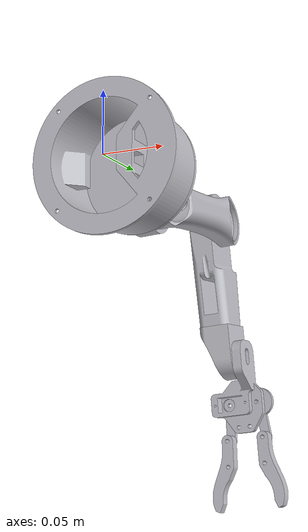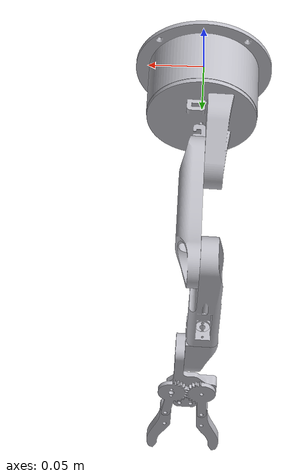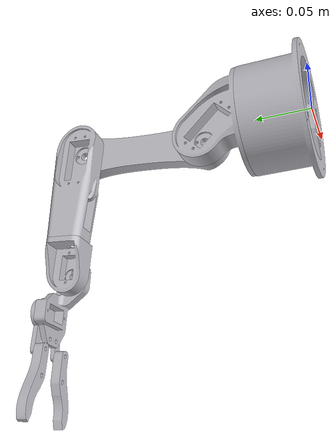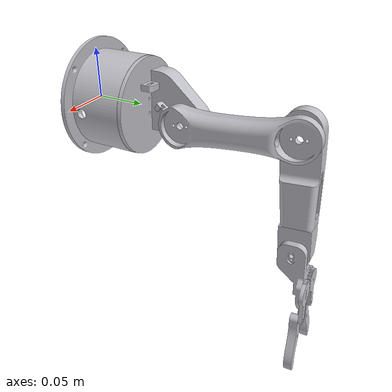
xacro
<?xml version="1.0"?>
<robot xmlns:xacro="http://www.ros.org/wiki/xacro" name="robotic_arm">
    <xacro:arg name="initial_positions_file" default="initial_positions.yaml" />

    <!-- Import robotic_arm urdf file -->
    <xacro:include filename="$(find robotic_arm_description)/urdf/robotic_arm.xacro" />

    <!-- Import control_xacro -->
    <xacro:include filename="robotic_arm.ros2_control.xacro" />

    <xacro:robotic_arm_ros2_control name="FakeSystem" initial_positions_file="$(arg initial_positions_file)"/>

</robot>

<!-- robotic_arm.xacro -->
<robot name="robotic_arm" xmlns:xacro="http://www.ros.org/wiki/xacro">

<xacro:include filename="$(find robotic_arm_description)/urdf/materials.xacro" />
<xacro:include filename="$(find robotic_arm_description)/urdf/robotic_arm.trans" />
<xacro:include filename="$(find robotic_arm_description)/urdf/robotic_arm.gazebo" />
<link name="base_link">
  <inertial>
    <origin xyz="0.0001171431546930657 0.022303576295246867 1.7519874916372608e-15" rpy="0 0 0"/>
    <mass value="0.7538944695406546"/>
    <inertia ixx="0.001005" iyy="0.001633" izz="0.001081" ixy="3.1e-05" iyz="0.0" ixz="0.0"/>
  </inertial>
  <visual>
    <origin xyz="0 0 0" rpy="0 0 0"/>
    <geometry>
      <mesh filename="package://robotic_arm_description/meshes/base_link.stl" scale="0.001 0.001 0.001"/>
    </geometry>
    <material name="silver"/>
  </visual>
  <collision>
    <origin xyz="0 0 0" rpy="0 0 0"/>
    <geometry>
      <mesh filename="package://robotic_arm_description/meshes/base_link.stl" scale="0.001 0.001 0.001"/>
    </geometry>
  </collision>
</link>

<link name="link_1_1">
  <inertial>
    <origin xyz="-0.006349206904501283 0.017289464494254593 -0.0017242407505354822" rpy="0 0 0"/>
    <mass value="0.5340963741858208"/>
    <inertia ixx="0.000457" iyy="0.000429" izz="0.000353" ixy="3.8e-05" iyz="5.1e-05" ixz="1e-06"/>
  </inertial>
  <visual>
    <origin xyz="-0.0 -0.056 -0.0" rpy="0 0 0"/>
    <geometry>
      <mesh filename="package://robotic_arm_description/meshes/link_1.stl" scale="0.001 0.001 0.001"/>
    </geometry>
    <material name="silver"/>
  </visual>
  <collision>
    <origin xyz="-0.0 -0.056 -0.0" rpy="0 0 0"/>
    <geometry>
      <mesh filename="package://robotic_arm_description/meshes/link_1.stl" scale="0.001 0.001 0.001"/>
    </geometry>
  </collision>
</link>

<link name="link_2_1">
  <inertial>
    <origin xyz="0.007458301591544432 0.05834016327651115 0.005840208407999372" rpy="0 0 0"/>
    <mass value="0.5054465993746223"/>
    <inertia ixx="0.000903" iyy="7.8e-05" izz="0.000859" ixy="5e-06" iyz="-6.6e-05" ixz="3e-06"/>
  </inertial>
  <visual>
    <origin xyz="0.003228 -0.096276 0.014118" rpy="0 0 0"/>
    <geometry>
      <mesh filename="package://robotic_arm_description/meshes/link_2.stl" scale="0.001 0.001 0.001"/>
    </geometry>
    <material name="silver"/>
  </visual>
  <collision>
    <origin xyz="0.003228 -0.096276 0.014118" rpy="0 0 0"/>
    <geometry>
      <mesh filename="package://robotic_arm_description/meshes/link_2.stl" scale="0.001 0.001 0.001"/>
    </geometry>
  </collision>
</link>

<link name="link_3_1">
  <inertial>
    <origin xyz="-0.005244224588835711 0.003575528092308461 -0.039471688392396564" rpy="0 0 0"/>
    <mass value="0.3946102743313453"/>
    <inertia ixx="0.000456" iyy="0.000426" izz="7.7e-05" ixy="-2e-06" iyz="3.2e-05" ixz="1.9e-05"/>
  </inertial>
  <visual>
    <origin xyz="0.003824 -0.215786 0.003298" rpy="0 0 0"/>
    <geometry>
      <mesh filename="package://robotic_arm_description/meshes/link_3.stl" scale="0.001 0.001 0.001"/>
    </geometry>
    <material name="silver"/>
  </visual>
  <collision>
    <origin xyz="0.003824 -0.215786 0.003298" rpy="0 0 0"/>
    <geometry>
      <mesh filename="package://robotic_arm_description/meshes/link_3.stl" scale="0.001 0.001 0.001"/>
    </geometry>
  </collision>
</link>

<link name="link_4_1">
  <inertial>
    <origin xyz="0.006209755305328308 0.006636171727518736 -0.016997387345786888" rpy="0 0 0"/>
    <mass value="0.129528136691123"/>
    <inertia ixx="3.9e-05" iyy="3.1e-05" izz="2.1e-05" ixy="-0.0" iyz="1e-06" ixz="6e-06"/>
  </inertial>
  <visual>
    <origin xyz="0.006366 -0.218612 0.093437" rpy="0 0 0"/>
    <geometry>
      <mesh filename="package://robotic_arm_description/meshes/link_4.stl" scale="0.001 0.001 0.001"/>
    </geometry>
    <material name="silver"/>
  </visual>
  <collision>
    <origin xyz="0.006366 -0.218612 0.093437" rpy="0 0 0"/>
    <geometry>
      <mesh filename="package://robotic_arm_description/meshes/link_4.stl" scale="0.001 0.001 0.001"/>
    </geometry>
  </collision>
</link>

<link name="link_5_1">
  <inertial>
    <origin xyz="-0.000701689680300318 0.007388450715264866 -0.02317984049900415" rpy="0 0 0"/>
    <mass value="0.12341304164534714"/>
    <inertia ixx="5.8e-05" iyy="6.2e-05" izz="2.1e-05" ixy="3e-06" iyz="1.4e-05" ixz="-9e-06"/>
  </inertial>
  <visual>
    <origin xyz="-0.009123 -0.22612 0.120059" rpy="0 0 0"/>
    <geometry>
      <mesh filename="package://robotic_arm_description/meshes/link_5.stl" scale="0.001 0.001 0.001"/>
    </geometry>
    <material name="silver"/>
  </visual>
  <collision>
    <origin xyz="-0.009123 -0.22612 0.120059" rpy="0 0 0"/>
    <geometry>
      <mesh filename="package://robotic_arm_description/meshes/link_5.stl" scale="0.001 0.001 0.001"/>
    </geometry>
  </collision>
</link>

<link name="link_6_1">
  <inertial>
    <origin xyz="0.0006316054982061902 0.0023728973428484568 -0.005427312313876276" rpy="0 0 0"/>
    <mass value="0.020736664284343446"/>
    <inertia ixx="3e-06" iyy="3e-06" izz="1e-06" ixy="0.0" iyz="0.0" ixz="-0.0"/>
  </inertial>
  <visual>
    <origin xyz="0.006715 -0.242645 0.15796" rpy="0 0 0"/>
    <geometry>
      <mesh filename="package://robotic_arm_description/meshes/link_6.stl" scale="0.001 0.001 0.001"/>
    </geometry>
    <material name="silver"/>
  </visual>
  <collision>
    <origin xyz="0.006715 -0.242645 0.15796" rpy="0 0 0"/>
    <geometry>
      <mesh filename="package://robotic_arm_description/meshes/link_6.stl" scale="0.001 0.001 0.001"/>
    </geometry>
  </collision>
</link>

<link name="link_7_1">
  <inertial>
    <origin xyz="0.0004447847250458846 0.0023792643753864917 -0.005532291094850261" rpy="0 0 0"/>
    <mass value="0.020141998404349184"/>
    <inertia ixx="3e-06" iyy="3e-06" izz="1e-06" ixy="-0.0" iyz="0.0" ixz="0.0"/>
  </inertial>
  <visual>
    <origin xyz="-0.020145 -0.242645 0.156479" rpy="0 0 0"/>
    <geometry>
      <mesh filename="package://robotic_arm_description/meshes/link_7.stl" scale="0.001 0.001 0.001"/>
    </geometry>
    <material name="silver"/>
  </visual>
  <collision>
    <origin xyz="-0.020145 -0.242645 0.156479" rpy="0 0 0"/>
    <geometry>
      <mesh filename="package://robotic_arm_description/meshes/link_7.stl" scale="0.001 0.001 0.001"/>
    </geometry>
  </collision>
</link>

<link name="link_8_1">
  <inertial>
    <origin xyz="-0.0043217768998322584 -0.0024471889446070483 -0.027144183797068788" rpy="0 0 0"/>
    <mass value="0.04236978910676512"/>
    <inertia ixx="1.3e-05" iyy="1.3e-05" izz="1e-06" ixy="0.0" iyz="1e-06" ixz="-3e-06"/>
  </inertial>
  <visual>
    <origin xyz="0.006512 -0.244712 0.18864" rpy="0 0 0"/>
    <geometry>
      <mesh filename="package://robotic_arm_description/meshes/link_8.stl" scale="0.001 0.001 0.001"/>
    </geometry>
    <material name="silver"/>
  </visual>
  <collision>
    <origin xyz="0.006512 -0.244712 0.18864" rpy="0 0 0"/>
    <geometry>
      <mesh filename="package://robotic_arm_description/meshes/link_8.stl" scale="0.001 0.001 0.001"/>
    </geometry>
  </collision>
</link>

<link name="link_9_1">
  <inertial>
    <origin xyz="0.005999725164482241 -0.002430666164696893 -0.026824809322127913" rpy="0 0 0"/>
    <mass value="0.04236978910676512"/>
    <inertia ixx="1.2e-05" iyy="1.3e-05" izz="2e-06" ixy="-0.0" iyz="1e-06" ixz="4e-06"/>
  </inertial>
  <visual>
    <origin xyz="-0.025827 -0.244697 0.18663" rpy="0 0 0"/>
    <geometry>
      <mesh filename="package://robotic_arm_description/meshes/link_9.stl" scale="0.001 0.001 0.001"/>
    </geometry>
    <material name="silver"/>
  </visual>
  <collision>
    <origin xyz="-0.025827 -0.244697 0.18663" rpy="0 0 0"/>
    <geometry>
      <mesh filename="package://robotic_arm_description/meshes/link_9.stl" scale="0.001 0.001 0.001"/>
    </geometry>
  </collision>
</link>

<joint name="Revolute 1" type="revolute">
  <origin xyz="0.0 0.056 0.0" rpy="0 0 0"/>
  <parent link="base_link"/>
  <child link="link_1_1"/>
  <axis xyz="0.0 1.0 0.0"/>
  <limit upper="6.283185" lower="0.0" effort="100" velocity="100"/>
</joint>

<joint name="Revolute 2" type="revolute">
  <origin xyz="-0.003228 0.040276 -0.014118" rpy="0 0 0"/>
  <parent link="link_1_1"/>
  <child link="link_2_1"/>
  <axis xyz="0.998484 0.0 0.055049"/>
  <limit upper="1.570796" lower="-1.570796" effort="100" velocity="100"/>
</joint>

<joint name="Revolute 3" type="revolute">
  <origin xyz="-0.000596 0.11951 0.01082" rpy="0 0 0"/>
  <parent link="link_2_1"/>
  <child link="link_3_1"/>
  <axis xyz="-0.998484 -0.0 -0.055049"/>
  <limit upper="0.0" lower="-3.141593" effort="100" velocity="100"/>
</joint>

<joint name="Revolute 4" type="revolute">
  <origin xyz="-0.002542 0.002826 -0.090139" rpy="0 0 0"/>
  <parent link="link_3_1"/>
  <child link="link_4_1"/>
  <axis xyz="0.054824 0.090297 -0.994405"/>
  <limit upper="6.283185" lower="0.0" effort="100" velocity="100"/>
</joint>

<joint name="Revolute 5" type="revolute">
  <origin xyz="0.015489 0.007508 -0.026622" rpy="0 0 0"/>
  <parent link="link_4_1"/>
  <child link="link_5_1"/>
  <axis xyz="-0.998484 -0.0 -0.055049"/>
  <limit upper="1.570796" lower="-1.570796" effort="100" velocity="100"/>
</joint>

<joint name="Revolute 6" type="revolute">
  <origin xyz="-0.015838 0.016525 -0.037901" rpy="0 0 0"/>
  <parent link="link_5_1"/>
  <child link="link_6_1"/>
  <axis xyz="-0.003705 0.997733 0.067194"/>
  <limit upper="1.22173" lower="0.0" effort="100" velocity="100"/>
</joint>

<joint name="Revolute 7" type="revolute">
  <origin xyz="0.011022 0.016525 -0.03642" rpy="0 0 0"/>
  <parent link="link_5_1"/>
  <child link="link_7_1"/>
  <axis xyz="-0.003705 0.997733 0.067194"/>
  <limit upper="0.0" lower="-1.22173" effort="100" velocity="100"/>
</joint>

<joint name="Revolute 9" type="revolute">
  <origin xyz="0.000203 0.002067 -0.03068" rpy="0 0 0"/>
  <parent link="link_6_1"/>
  <child link="link_8_1"/>
  <axis xyz="0.003705 -0.997733 -0.067194"/>
  <limit upper="0.0" lower="-1.570796" effort="100" velocity="100"/>
</joint>

<joint name="Revolute 10" type="revolute">
  <origin xyz="0.005682 0.002052 -0.030151" rpy="0 0 0"/>
  <parent link="link_7_1"/>
  <child link="link_9_1"/>
  <axis xyz="0.003705 -0.997733 -0.067194"/>
  <limit upper="1.570796" lower="0.0" effort="100" velocity="100"/>
</joint>

</robot>

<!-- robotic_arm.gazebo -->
<robot name="robotic_arm" xmlns:xacro="http://www.ros.org/wiki/xacro" >

<xacro:property name="body_color" value="Gazebo/Silver" />

<gazebo>
  <plugin name="control" filename="libgazebo_ros_control.so"/>
</gazebo>
<gazebo reference="base_link">
  <material>${body_color}</material>
  <mu1>0.2</mu1>
  <mu2>0.2</mu2>
  <selfCollide>true</selfCollide>
  <gravity>true</gravity>
</gazebo>

<gazebo reference="link_1_1">
  <material>${body_color}</material>
  <mu1>0.2</mu1>
  <mu2>0.2</mu2>
  <selfCollide>true</selfCollide>
</gazebo>

<gazebo reference="link_2_1">
  <material>${body_color}</material>
  <mu1>0.2</mu1>
  <mu2>0.2</mu2>
  <selfCollide>true</selfCollide>
</gazebo>

<gazebo reference="link_3_1">
  <material>${body_color}</material>
  <mu1>0.2</mu1>
  <mu2>0.2</mu2>
  <selfCollide>true</selfCollide>
</gazebo>

<gazebo reference="link_4_1">
  <material>${body_color}</material>
  <mu1>0.2</mu1>
  <mu2>0.2</mu2>
  <selfCollide>true</selfCollide>
</gazebo>

<gazebo reference="link_5_1">
  <material>${body_color}</material>
  <mu1>0.2</mu1>
  <mu2>0.2</mu2>
  <selfCollide>true</selfCollide>
</gazebo>

<gazebo reference="link_6_1">
  <material>${body_color}</material>
  <mu1>0.2</mu1>
  <mu2>0.2</mu2>
  <selfCollide>true</selfCollide>
</gazebo>

<gazebo reference="link_7_1">
  <material>${body_color}</material>
  <mu1>0.2</mu1>
  <mu2>0.2</mu2>
  <selfCollide>true</selfCollide>
</gazebo>

<gazebo reference="link_8_1">
  <material>${body_color}</material>
  <mu1>0.2</mu1>
  <mu2>0.2</mu2>
  <selfCollide>true</selfCollide>
</gazebo>

<gazebo reference="link_9_1">
  <material>${body_color}</material>
  <mu1>0.2</mu1>
  <mu2>0.2</mu2>
  <selfCollide>true</selfCollide>
</gazebo>

</robot>
